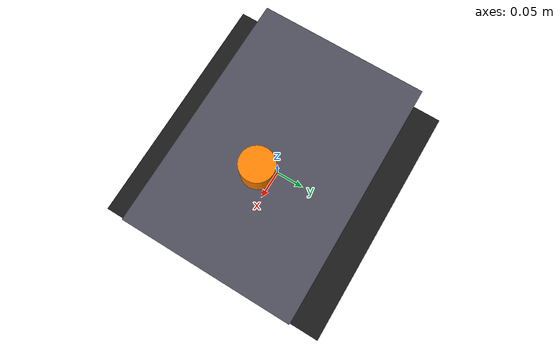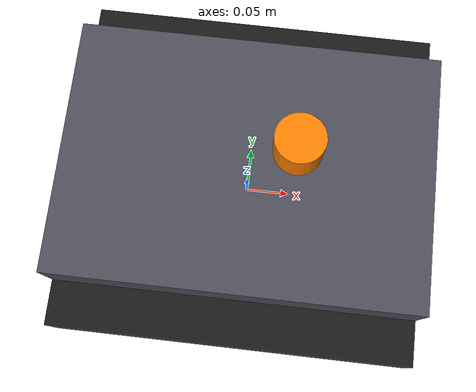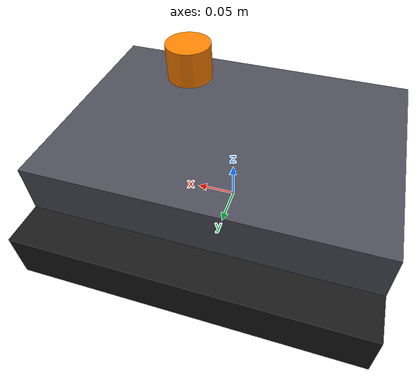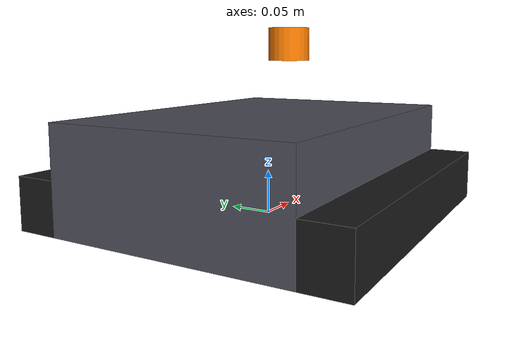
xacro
<?xml version="1.0"?>
<!-- Гусеничная база + D500 на крыше. Размеры ориентировочные — уточнить обмером. -->
<robot xmlns:xacro="http://www.ros.org/wiki/xacro" name="tracked_tank">

  <xacro:property name="body_length" value="0.40"/>
  <xacro:property name="body_width" value="0.28"/>
  <xacro:property name="body_height" value="0.12"/>
  <xacro:property name="track_width" value="0.05"/>
  <xacro:property name="lidar_z" value="0.18"/>

  <link name="base_link">
    <visual>
      <origin xyz="0 0 ${body_height/2}" rpy="0 0 0"/>
      <geometry>
        <box size="${body_length} ${body_width} ${body_height}"/>
      </geometry>
      <material name="body_grey">
        <color rgba="0.3 0.3 0.35 1"/>
      </material>
    </visual>
    <collision>
      <origin xyz="0 0 ${body_height/2}" rpy="0 0 0"/>
      <geometry>
        <box size="${body_length} ${body_width} ${body_height}"/>
      </geometry>
    </collision>
    <inertial>
      <mass value="10.0"/>
      <origin xyz="0 0 ${body_height/2}" rpy="0 0 0"/>
      <inertia ixx="0.15" ixy="0" ixz="0" iyy="0.20" iyz="0" izz="0.25"/>
    </inertial>
  </link>

  <!-- Левая гусеница (только визуал / collision) -->
  <link name="left_track">
    <visual>
      <origin xyz="0 0 0" rpy="0 0 0"/>
      <geometry>
        <box size="${body_length} ${track_width} 0.06"/>
      </geometry>
      <material name="track_black">
        <color rgba="0.1 0.1 0.1 1"/>
      </material>
    </visual>
    <collision>
      <geometry>
        <box size="${body_length} ${track_width} 0.06"/>
      </geometry>
    </collision>
  </link>
  <joint name="left_track_joint" type="fixed">
    <parent link="base_link"/>
    <child link="left_track"/>
    <origin xyz="0 ${body_width/2 + track_width/2} 0.03" rpy="0 0 0"/>
  </joint>

  <link name="right_track">
    <visual>
      <geometry>
        <box size="${body_length} ${track_width} 0.06"/>
      </geometry>
      <material name="track_black">
        <color rgba="0.1 0.1 0.1 1"/>
      </material>
    </visual>
    <collision>
      <geometry>
        <box size="${body_length} ${track_width} 0.06"/>
      </geometry>
    </collision>
  </link>
  <joint name="right_track_joint" type="fixed">
    <parent link="base_link"/>
    <child link="right_track"/>
    <origin xyz="0 ${-(body_width/2 + track_width/2)} 0.03" rpy="0 0 0"/>
  </joint>

  <!-- Основание лидара на крыше; zero-угол датчика = +X робота -->
  <link name="ldlidar_base"/>
  <joint name="ldlidar_base_joint" type="fixed">
    <parent link="base_link"/>
    <child link="ldlidar_base"/>
    <origin xyz="0.05 0 ${lidar_z}" rpy="0 0 0"/>
  </joint>

  <link name="ldlidar_link">
    <visual>
      <geometry>
        <cylinder radius="0.025" length="0.04"/>
      </geometry>
      <material name="lidar_orange">
        <color rgba="1.0 0.5 0.0 1"/>
      </material>
    </visual>
  </link>
  <joint name="ldlidar_joint" type="fixed">
    <parent link="ldlidar_base"/>
    <child link="ldlidar_link"/>
    <origin xyz="0 0 0.02" rpy="0 0 0"/>
  </joint>

</robot>
